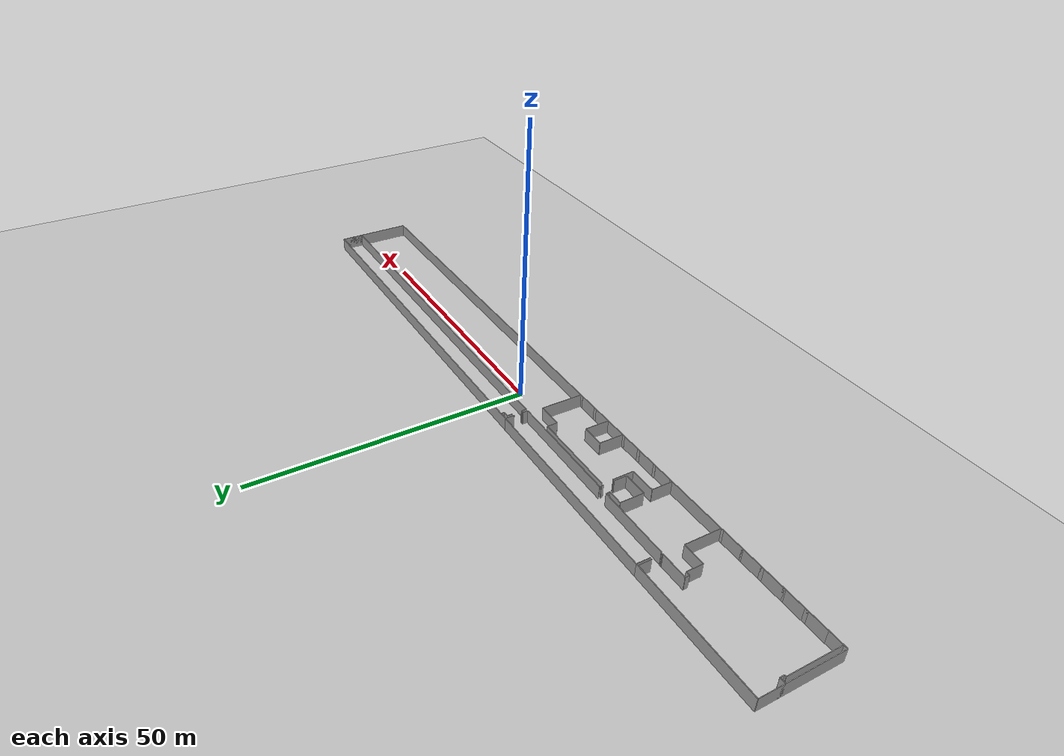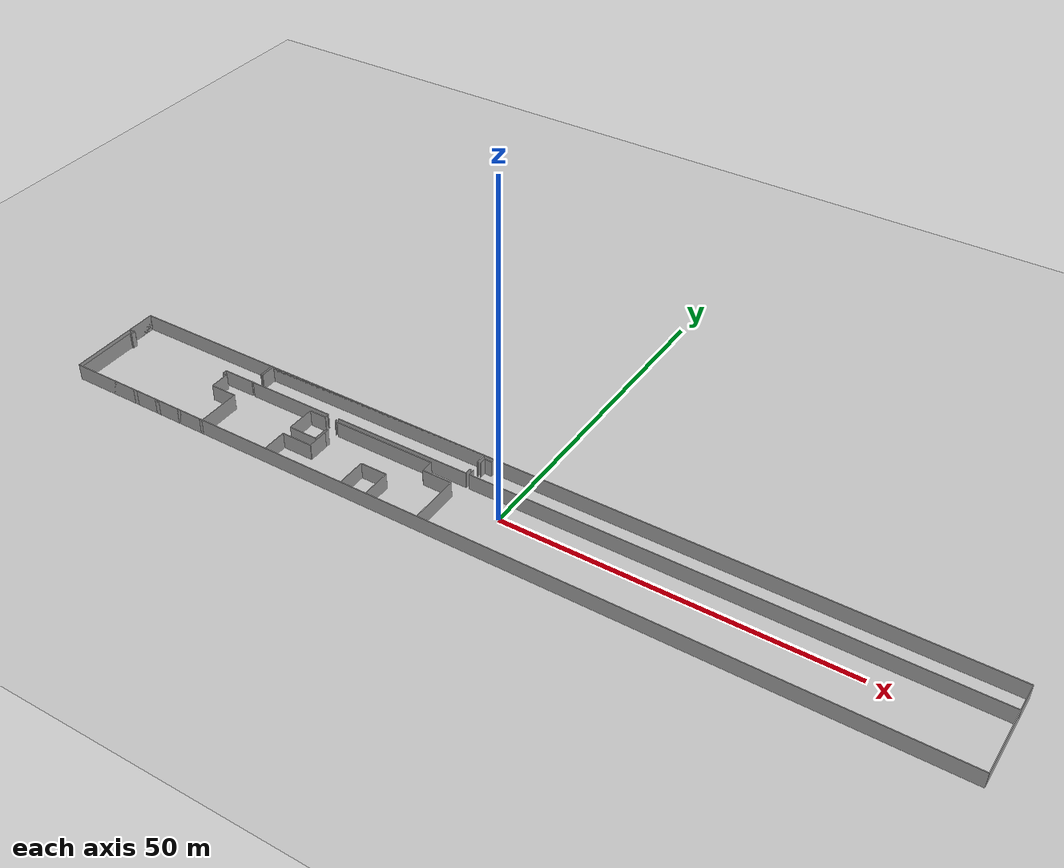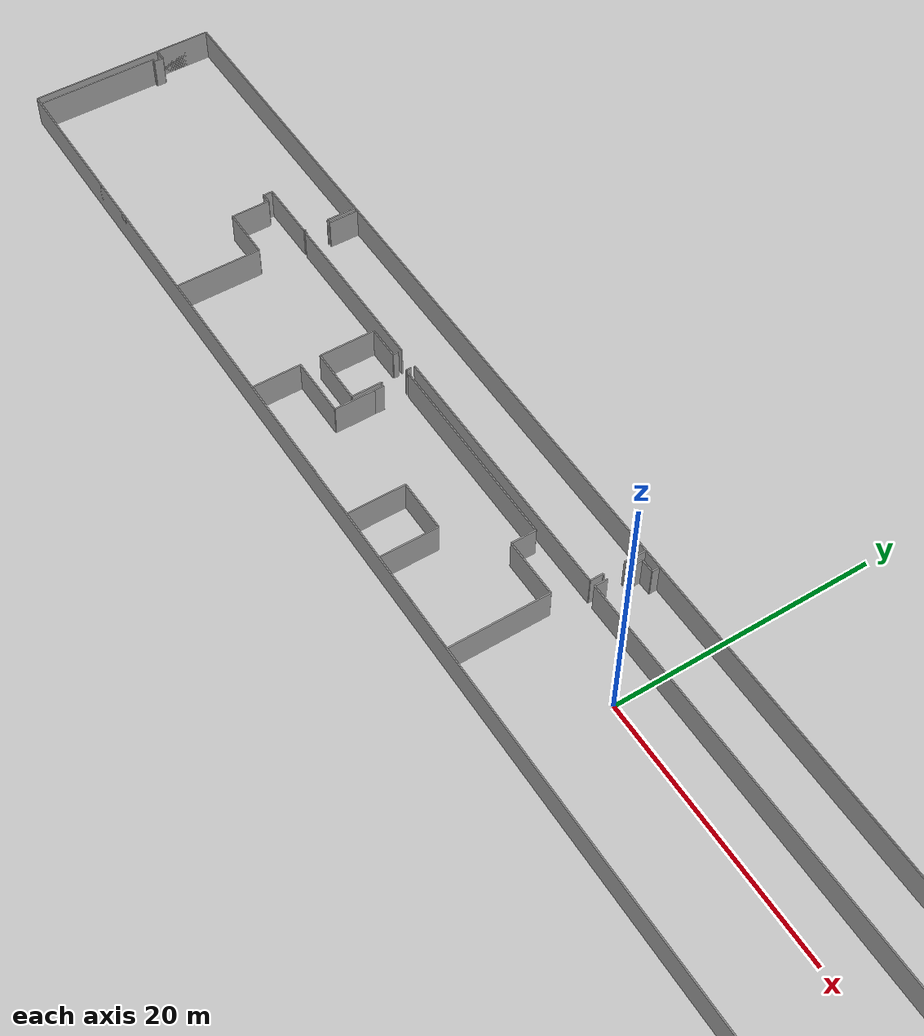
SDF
<sdf version="1.6">
  <world name="default">
    <light name="sun" type="directional">
      <cast_shadows>1</cast_shadows>
      <pose frame="">0 0 10 0 -0 0</pose>
      <diffuse>0.8 0.8 0.8 1</diffuse>
      <specular>0.1 0.1 0.1 1</specular>
      <attenuation>
        <range>1000</range>
        <constant>0.9</constant>
        <linear>0.01</linear>
        <quadratic>0.001</quadratic>
      </attenuation>
      <direction>-0.5 0.5 -1</direction>
    </light>
    <model name="ground_plane">
      <static>1</static>
      <link name="link">
        <collision name="collision">
          <geometry>
            <plane>
              <normal>0 0 1</normal>
              <size>100 100</size>
            </plane>
          </geometry>
          <surface>
            <friction>
              <ode>
                <mu>100</mu>
                <mu2>50</mu2>
              </ode>
              <torsional>
                <ode />
              </torsional>
            </friction>
            <contact>
              <ode />
            </contact>
            <bounce />
          </surface>
          <max_contacts>10</max_contacts>
        </collision>
        <visual name="visual">
          <cast_shadows>0</cast_shadows>
          <geometry>
            <plane>
              <normal>0 0 1</normal>
              <size>100 100</size>
            </plane>
          </geometry>
          <material>
            <script>
              <uri>file://media/materials/scripts/gazebo.material</uri>
              <name>Gazebo/Grey</name>
            </script>
          </material>
        </visual>
        <self_collide>0</self_collide>
        <kinematic>0</kinematic>
        <gravity>1</gravity>
      </link>
    </model>
    <gravity>0 0 -9.8</gravity>
    <magnetic_field>6e-06 2.3e-05 -4.2e-05</magnetic_field>
    <atmosphere type="adiabatic" />
    <physics default="0" name="default_physics" type="ode">
      <max_step_size>0.001</max_step_size>
      <real_time_factor>1</real_time_factor>
      <real_time_update_rate>1000</real_time_update_rate>
    </physics>
    <scene>
      <ambient>0.4 0.4 0.4 1</ambient>
      <background>0.7 0.7 0.7 1</background>
      <shadows>1</shadows>
    </scene>
    <spherical_coordinates>
      <surface_model>EARTH_WGS84</surface_model>
      <latitude_deg>0</latitude_deg>
      <longitude_deg>0</longitude_deg>
      <elevation>0</elevation>
      <heading_deg>0</heading_deg>
    </spherical_coordinates>
  <model name="0510032199_A_40_1_107">
		<static>1</static>
		<link name="Wall_0">
			<collision name="Wall_0_Collision">
				<geometry>
					<box>
						<size>9.55492141373 0.1 2.5</size>
					</box>
				</geometry>
				<pose frame="">4.77746070686 0 1.25 0 0 0</pose>
			</collision>
			<visual name="Wall_0_Visual">
				<pose frame="">4.77746070686 0 1.25 0 0 0</pose>
				<geometry>
					<box>
						<size>9.55492141373 0.1 2.5</size>
					</box>
				</geometry>
				<material>
					<script>
						<uri>file://media/materials/scripts/gazebo.material</uri>
						<name>Gazebo/Grey</name>
					</script>
					<ambient>1 1 1 1</ambient>
				</material>
			</visual>
			<pose frame="">0.675466973427 -14.625118372 0 0 0 1.57079632679</pose>
		</link>
		<link name="Wall_1">
			<collision name="Wall_1_Collision">
				<geometry>
					<box>
						<size>0.268966525362 0.1 2.5</size>
					</box>
				</geometry>
				<pose frame="">0.134483262681 0 1.25 0 0 0</pose>
			</collision>
			<visual name="Wall_1_Visual">
				<pose frame="">0.134483262681 0 1.25 0 0 0</pose>
				<geometry>
					<box>
						<size>0.268966525362 0.1 2.5</size>
					</box>
				</geometry>
				<material>
					<script>
						<uri>file://media/materials/scripts/gazebo.material</uri>
						<name>Gazebo/Grey</name>
					</script>
					<ambient>1 1 1 1</ambient>
				</material>
			</visual>
			<pose frame="">0.675466973427 -5.07019695824 0 0 0 0.0</pose>
		</link>
		<link name="Wall_2">
			<collision name="Wall_2_Collision">
				<geometry>
					<box>
						<size>0.735463287213 0.1 2.5</size>
					</box>
				</geometry>
				<pose frame="">0.367731643607 0 1.25 0 0 0</pose>
			</collision>
			<visual name="Wall_2_Visual">
				<pose frame="">0.367731643607 0 1.25 0 0 0</pose>
				<geometry>
					<box>
						<size>0.735463287213 0.1 2.5</size>
					</box>
				</geometry>
				<material>
					<script>
						<uri>file://media/materials/scripts/gazebo.material</uri>
						<name>Gazebo/Grey</name>
					</script>
					<ambient>1 1 1 1</ambient>
				</material>
			</visual>
			<pose frame="">0.944433498789 -5.07019695824 0 0 0 1.57079632679</pose>
		</link>
		<link name="Wall_3">
			<collision name="Wall_3_Collision">
				<geometry>
					<box>
						<size>0.944433498789 0.1 2.5</size>
					</box>
				</geometry>
				<pose frame="">0.472216749395 0 1.25 0 0 0</pose>
			</collision>
			<visual name="Wall_3_Visual">
				<pose frame="">0.472216749395 0 1.25 0 0 0</pose>
				<geometry>
					<box>
						<size>0.944433498789 0.1 2.5</size>
					</box>
				</geometry>
				<material>
					<script>
						<uri>file://media/materials/scripts/gazebo.material</uri>
						<name>Gazebo/Grey</name>
					</script>
					<ambient>1 1 1 1</ambient>
				</material>
			</visual>
			<pose frame="">0.944433498789 -4.33473367102 0 0 0 3.14159265359</pose>
		</link>
		<link name="Wall_4">
			<collision name="Wall_4_Collision">
				<geometry>
					<box>
						<size>4.31948037091 0.1 2.5</size>
					</box>
				</geometry>
				<pose frame="">2.15974018545 0 1.25 0 0 0</pose>
			</collision>
			<visual name="Wall_4_Visual">
				<pose frame="">2.15974018545 0 1.25 0 0 0</pose>
				<geometry>
					<box>
						<size>4.31948037091 0.1 2.5</size>
					</box>
				</geometry>
				<material>
					<script>
						<uri>file://media/materials/scripts/gazebo.material</uri>
						<name>Gazebo/Grey</name>
					</script>
					<ambient>1 1 1 1</ambient>
				</material>
			</visual>
			<pose frame="">0.0 -4.33473367102 0 0 0 1.57079632679</pose>
		</link>
		<link name="Wall_5">
			<collision name="Wall_5_Collision">
				<geometry>
					<box>
						<size>23.1593397863 0.1 2.5</size>
					</box>
				</geometry>
				<pose frame="">11.5796698932 0 1.25 0 0 0</pose>
			</collision>
			<visual name="Wall_5_Visual">
				<pose frame="">11.5796698932 0 1.25 0 0 0</pose>
				<geometry>
					<box>
						<size>23.1593397863 0.1 2.5</size>
					</box>
				</geometry>
				<material>
					<script>
						<uri>file://media/materials/scripts/gazebo.material</uri>
						<name>Gazebo/Grey</name>
					</script>
					<ambient>1 1 1 1</ambient>
				</material>
			</visual>
			<pose frame="">0.0 -0.015253300115 0 0 0 0.0</pose>
		</link>
		<link name="Wall_6">
			<collision name="Wall_6_Collision">
				<geometry>
					<box>
						<size>2.33286514176 0.1 2.5</size>
					</box>
				</geometry>
				<pose frame="">1.16643257088 0 1.25 0 0 0</pose>
			</collision>
			<visual name="Wall_6_Visual">
				<pose frame="">1.16643257088 0 1.25 0 0 0</pose>
				<geometry>
					<box>
						<size>2.33286514176 0.1 2.5</size>
					</box>
				</geometry>
				<material>
					<script>
						<uri>file://media/materials/scripts/gazebo.material</uri>
						<name>Gazebo/Grey</name>
					</script>
					<ambient>1 1 1 1</ambient>
				</material>
			</visual>
			<pose frame="">23.1593397863 -0.015253300115 0 0 0 -1.57079632679</pose>
		</link>
		<link name="Wall_7">
			<collision name="Wall_7_Collision">
				<geometry>
					<box>
						<size>0.0934264632046 0.1 2.5</size>
					</box>
				</geometry>
				<pose frame="">0.0467132316023 0 1.25 0 0 0</pose>
			</collision>
			<visual name="Wall_7_Visual">
				<pose frame="">0.0467132316023 0 1.25 0 0 0</pose>
				<geometry>
					<box>
						<size>0.0934264632046 0.1 2.5</size>
					</box>
				</geometry>
				<material>
					<script>
						<uri>file://media/materials/scripts/gazebo.material</uri>
						<name>Gazebo/Grey</name>
					</script>
					<ambient>1 1 1 1</ambient>
				</material>
			</visual>
			<pose frame="">23.1593397863 -2.34811844188 0 0 0 0.0</pose>
		</link>
		<link name="Wall_8">
			<collision name="Wall_8_Collision">
				<geometry>
					<box>
						<size>0.0714362888721 0.1 2.5</size>
					</box>
				</geometry>
				<pose frame="">0.035718144436 0 1.25 0 0 0</pose>
			</collision>
			<visual name="Wall_8_Visual">
				<pose frame="">0.035718144436 0 1.25 0 0 0</pose>
				<geometry>
					<box>
						<size>0.0714362888721 0.1 2.5</size>
					</box>
				</geometry>
				<material>
					<script>
						<uri>file://media/materials/scripts/gazebo.material</uri>
						<name>Gazebo/Grey</name>
					</script>
					<ambient>1 1 1 1</ambient>
				</material>
			</visual>
			<pose frame="">23.2527662495 -4.23596855278 0 0 0 3.14159265359</pose>
		</link>
		<link name="Wall_9">
			<collision name="Wall_9_Collision">
				<geometry>
					<box>
						<size>0.0831304856269 0.1 2.5</size>
					</box>
				</geometry>
				<pose frame="">0.0415652428135 0 1.25 0 0 0</pose>
			</collision>
			<visual name="Wall_9_Visual">
				<pose frame="">0.0415652428135 0 1.25 0 0 0</pose>
				<geometry>
					<box>
						<size>0.0831304856269 0.1 2.5</size>
					</box>
				</geometry>
				<material>
					<script>
						<uri>file://media/materials/scripts/gazebo.material</uri>
						<name>Gazebo/Grey</name>
					</script>
					<ambient>1 1 1 1</ambient>
				</material>
			</visual>
			<pose frame="">23.1813299607 -4.23596855278 0 0 0 -1.57079632679</pose>
		</link>
		<link name="Wall_10">
			<collision name="Wall_10_Collision">
				<geometry>
					<box>
						<size>4.71898972309 0.1 2.5</size>
					</box>
				</geometry>
				<pose frame="">2.35949486154 0 1.25 0 0 0</pose>
			</collision>
			<visual name="Wall_10_Visual">
				<pose frame="">2.35949486154 0 1.25 0 0 0</pose>
				<geometry>
					<box>
						<size>4.71898972309 0.1 2.5</size>
					</box>
				</geometry>
				<material>
					<script>
						<uri>file://media/materials/scripts/gazebo.material</uri>
						<name>Gazebo/Grey</name>
					</script>
					<ambient>1 1 1 1</ambient>
				</material>
			</visual>
			<pose frame="">23.1813299607 -4.31909903841 0 0 0 3.14159265359</pose>
		</link>
		<link name="Wall_11">
			<collision name="Wall_11_Collision">
				<geometry>
					<box>
						<size>0.717667770412 0.1 2.5</size>
					</box>
				</geometry>
				<pose frame="">0.358833885206 0 1.25 0 0 0</pose>
			</collision>
			<visual name="Wall_11_Visual">
				<pose frame="">0.358833885206 0 1.25 0 0 0</pose>
				<geometry>
					<box>
						<size>0.717667770412 0.1 2.5</size>
					</box>
				</geometry>
				<material>
					<script>
						<uri>file://media/materials/scripts/gazebo.material</uri>
						<name>Gazebo/Grey</name>
					</script>
					<ambient>1 1 1 1</ambient>
				</material>
			</visual>
			<pose frame="">18.4623402376 -4.31909903841 0 0 0 -1.57079632679</pose>
		</link>
		<link name="Wall_12">
			<collision name="Wall_12_Collision">
				<geometry>
					<box>
						<size>0.710295342023 0.1 2.5</size>
					</box>
				</geometry>
				<pose frame="">0.355147671012 0 1.25 0 0 0</pose>
			</collision>
			<visual name="Wall_12_Visual">
				<pose frame="">0.355147671012 0 1.25 0 0 0</pose>
				<geometry>
					<box>
						<size>0.710295342023 0.1 2.5</size>
					</box>
				</geometry>
				<material>
					<script>
						<uri>file://media/materials/scripts/gazebo.material</uri>
						<name>Gazebo/Grey</name>
					</script>
					<ambient>1 1 1 1</ambient>
				</material>
			</visual>
			<pose frame="">18.4623402376 -5.03676680882 0 0 0 0.0</pose>
		</link>
		<link name="Wall_13">
			<collision name="Wall_13_Collision">
				<geometry>
					<box>
						<size>2.98074906415 0.1 2.5</size>
					</box>
				</geometry>
				<pose frame="">1.49037453207 0 1.25 0 0 0</pose>
			</collision>
			<visual name="Wall_13_Visual">
				<pose frame="">1.49037453207 0 1.25 0 0 0</pose>
				<geometry>
					<box>
						<size>2.98074906415 0.1 2.5</size>
					</box>
				</geometry>
				<material>
					<script>
						<uri>file://media/materials/scripts/gazebo.material</uri>
						<name>Gazebo/Grey</name>
					</script>
					<ambient>1 1 1 1</ambient>
				</material>
			</visual>
			<pose frame="">19.1726355796 -5.03676680882 0 0 0 -1.57079632679</pose>
		</link>
		<link name="Wall_14">
			<collision name="Wall_14_Collision">
				<geometry>
					<box>
						<size>3.97958600001 0.1 2.5</size>
					</box>
				</geometry>
				<pose frame="">1.98979300001 0 1.25 0 0 0</pose>
			</collision>
			<visual name="Wall_14_Visual">
				<pose frame="">1.98979300001 0 1.25 0 0 0</pose>
				<geometry>
					<box>
						<size>3.97958600001 0.1 2.5</size>
					</box>
				</geometry>
				<material>
					<script>
						<uri>file://media/materials/scripts/gazebo.material</uri>
						<name>Gazebo/Grey</name>
					</script>
					<ambient>1 1 1 1</ambient>
				</material>
			</visual>
			<pose frame="">19.1726355796 -8.01751587297 0 0 0 0.0</pose>
		</link>
		<link name="Wall_15">
			<collision name="Wall_15_Collision">
				<geometry>
					<box>
						<size>6.62743178915 0.1 2.5</size>
					</box>
				</geometry>
				<pose frame="">3.31371589457 0 1.25 0 0 0</pose>
			</collision>
			<visual name="Wall_15_Visual">
				<pose frame="">3.31371589457 0 1.25 0 0 0</pose>
				<geometry>
					<box>
						<size>6.62743178915 0.1 2.5</size>
					</box>
				</geometry>
				<material>
					<script>
						<uri>file://media/materials/scripts/gazebo.material</uri>
						<name>Gazebo/Grey</name>
					</script>
					<ambient>1 1 1 1</ambient>
				</material>
			</visual>
			<pose frame="">23.1522215796 -8.01751587297 0 0 0 -1.57079632679</pose>
		</link>
		<link name="Wall_16">
			<collision name="Wall_16_Collision">
				<geometry>
					<box>
						<size>0.540856599912 0.1 2.5</size>
					</box>
				</geometry>
				<pose frame="">0.270428299956 0 1.25 0 0 0</pose>
			</collision>
			<visual name="Wall_16_Visual">
				<pose frame="">0.270428299956 0 1.25 0 0 0</pose>
				<geometry>
					<box>
						<size>0.540856599912 0.1 2.5</size>
					</box>
				</geometry>
				<material>
					<script>
						<uri>file://media/materials/scripts/gazebo.material</uri>
						<name>Gazebo/Grey</name>
					</script>
					<ambient>1 1 1 1</ambient>
				</material>
			</visual>
			<pose frame="">23.1522215796 -14.6449476621 0 0 0 3.14159265359</pose>
		</link>
		<link name="Wall_17">
			<collision name="Wall_17_Collision">
				<geometry>
					<box>
						<size>0.621444868853 0.1 2.5</size>
					</box>
				</geometry>
				<pose frame="">0.310722434427 0 1.25 0 0 0</pose>
			</collision>
			<visual name="Wall_17_Visual">
				<pose frame="">0.310722434427 0 1.25 0 0 0</pose>
				<geometry>
					<box>
						<size>0.621444868853 0.1 2.5</size>
					</box>
				</geometry>
				<material>
					<script>
						<uri>file://media/materials/scripts/gazebo.material</uri>
						<name>Gazebo/Grey</name>
					</script>
					<ambient>1 1 1 1</ambient>
				</material>
			</visual>
			<pose frame="">19.1967866381 -14.6449476621 0 0 0 3.14159265359</pose>
		</link>
		<link name="Wall_18">
			<collision name="Wall_18_Collision">
				<geometry>
					<box>
						<size>0.67762785761 0.1 2.5</size>
					</box>
				</geometry>
				<pose frame="">0.338813928805 0 1.25 0 0 0</pose>
			</collision>
			<visual name="Wall_18_Visual">
				<pose frame="">0.338813928805 0 1.25 0 0 0</pose>
				<geometry>
					<box>
						<size>0.67762785761 0.1 2.5</size>
					</box>
				</geometry>
				<material>
					<script>
						<uri>file://media/materials/scripts/gazebo.material</uri>
						<name>Gazebo/Grey</name>
					</script>
					<ambient>1 1 1 1</ambient>
				</material>
			</visual>
			<pose frame="">15.1926682471 -14.6449476621 0 0 0 3.14159265359</pose>
		</link>
		<link name="Wall_19">
			<collision name="Wall_19_Collision">
				<geometry>
					<box>
						<size>0.635681282294 0.1 2.5</size>
					</box>
				</geometry>
				<pose frame="">0.317840641147 0 1.25 0 0 0</pose>
			</collision>
			<visual name="Wall_19_Visual">
				<pose frame="">0.317840641147 0 1.25 0 0 0</pose>
				<geometry>
					<box>
						<size>0.635681282294 0.1 2.5</size>
					</box>
				</geometry>
				<material>
					<script>
						<uri>file://media/materials/scripts/gazebo.material</uri>
						<name>Gazebo/Grey</name>
					</script>
					<ambient>1 1 1 1</ambient>
				</material>
			</visual>
			<pose frame="">11.1185117864 -14.6449476621 0 0 0 3.14159265359</pose>
		</link>
		<link name="Wall_20">
			<collision name="Wall_20_Collision">
				<geometry>
					<box>
						<size>0.652332801586 0.1 2.5</size>
					</box>
				</geometry>
				<pose frame="">0.326166400793 0 1.25 0 0 0</pose>
			</collision>
			<visual name="Wall_20_Visual">
				<pose frame="">0.326166400793 0 1.25 0 0 0</pose>
				<geometry>
					<box>
						<size>0.652332801586 0.1 2.5</size>
					</box>
				</geometry>
				<material>
					<script>
						<uri>file://media/materials/scripts/gazebo.material</uri>
						<name>Gazebo/Grey</name>
					</script>
					<ambient>1 1 1 1</ambient>
				</material>
			</visual>
			<pose frame="">7.11286806531 -14.6449476621 0 0 0 3.14159265359</pose>
		</link>
		<link name="Wall_21">
			<collision name="Wall_21_Collision">
				<geometry>
					<box>
						<size>2.41099273872 0.1 2.5</size>
					</box>
				</geometry>
				<pose frame="">1.20549636936 0 1.25 0 0 0</pose>
			</collision>
			<visual name="Wall_21_Visual">
				<pose frame="">1.20549636936 0 1.25 0 0 0</pose>
				<geometry>
					<box>
						<size>2.41099273872 0.1 2.5</size>
					</box>
				</geometry>
				<material>
					<script>
						<uri>file://media/materials/scripts/gazebo.material</uri>
						<name>Gazebo/Grey</name>
					</script>
					<ambient>1 1 1 1</ambient>
				</material>
			</visual>
			<pose frame="">3.08637816744 -14.6449476621 0 0 0 3.13336802753</pose>
		</link>
		<link name="Wall_22">
			<collision name="Wall_22_Collision">
				<geometry>
					<box>
						<size>35.8902525057 0.1 2.5</size>
					</box>
				</geometry>
				<pose frame="">17.9451262528 0 1.25 0 0 0</pose>
			</collision>
			<visual name="Wall_22_Visual">
				<pose frame="">17.9451262528 0 1.25 0 0 0</pose>
				<geometry>
					<box>
						<size>35.8902525057 0.1 2.5</size>
					</box>
				</geometry>
				<material>
					<script>
						<uri>file://media/materials/scripts/gazebo.material</uri>
						<name>Gazebo/Grey</name>
					</script>
					<ambient>1 1 1 1</ambient>
				</material>
			</visual>
			<pose frame="">23.4969461622 -0.0 0 0 0 0.0</pose>
		</link>
		<link name="Wall_23">
			<collision name="Wall_23_Collision">
				<geometry>
					<box>
						<size>1.67227013595 0.1 2.5</size>
					</box>
				</geometry>
				<pose frame="">0.836135067973 0 1.25 0 0 0</pose>
			</collision>
			<visual name="Wall_23_Visual">
				<pose frame="">0.836135067973 0 1.25 0 0 0</pose>
				<geometry>
					<box>
						<size>1.67227013595 0.1 2.5</size>
					</box>
				</geometry>
				<material>
					<script>
						<uri>file://media/materials/scripts/gazebo.material</uri>
						<name>Gazebo/Grey</name>
					</script>
					<ambient>1 1 1 1</ambient>
				</material>
			</visual>
			<pose frame="">59.3871986679 -0.0 0 0 0 -1.57079632679</pose>
		</link>
		<link name="Wall_24">
			<collision name="Wall_24_Collision">
				<geometry>
					<box>
						<size>0.152660111985 0.1 2.5</size>
					</box>
				</geometry>
				<pose frame="">0.0763300559923 0 1.25 0 0 0</pose>
			</collision>
			<visual name="Wall_24_Visual">
				<pose frame="">0.0763300559923 0 1.25 0 0 0</pose>
				<geometry>
					<box>
						<size>0.152660111985 0.1 2.5</size>
					</box>
				</geometry>
				<material>
					<script>
						<uri>file://media/materials/scripts/gazebo.material</uri>
						<name>Gazebo/Grey</name>
					</script>
					<ambient>1 1 1 1</ambient>
				</material>
			</visual>
			<pose frame="">59.3871986679 -1.67227013595 0 0 0 0.0</pose>
		</link>
		<link name="Wall_25">
			<collision name="Wall_25_Collision">
				<geometry>
					<box>
						<size>0.138423698544 0.1 2.5</size>
					</box>
				</geometry>
				<pose frame="">0.069211849272 0 1.25 0 0 0</pose>
			</collision>
			<visual name="Wall_25_Visual">
				<pose frame="">0.069211849272 0 1.25 0 0 0</pose>
				<geometry>
					<box>
						<size>0.138423698544 0.1 2.5</size>
					</box>
				</geometry>
				<material>
					<script>
						<uri>file://media/materials/scripts/gazebo.material</uri>
						<name>Gazebo/Grey</name>
					</script>
					<ambient>1 1 1 1</ambient>
				</material>
			</visual>
			<pose frame="">59.5398587799 -3.34886204026 0 0 0 3.14159265359</pose>
		</link>
		<link name="Wall_26">
			<collision name="Wall_26_Collision">
				<geometry>
					<box>
						<size>0.98917651246 0.1 2.5</size>
					</box>
				</geometry>
				<pose frame="">0.49458825623 0 1.25 0 0 0</pose>
			</collision>
			<visual name="Wall_26_Visual">
				<pose frame="">0.49458825623 0 1.25 0 0 0</pose>
				<geometry>
					<box>
						<size>0.98917651246 0.1 2.5</size>
					</box>
				</geometry>
				<material>
					<script>
						<uri>file://media/materials/scripts/gazebo.material</uri>
						<name>Gazebo/Grey</name>
					</script>
					<ambient>1 1 1 1</ambient>
				</material>
			</visual>
			<pose frame="">59.4014350813 -3.34886204026 0 0 0 -1.57079632679</pose>
		</link>
		<link name="Wall_27">
			<collision name="Wall_27_Collision">
				<geometry>
					<box>
						<size>20.9626103481 0.1 2.5</size>
					</box>
				</geometry>
				<pose frame="">10.481305174 0 1.25 0 0 0</pose>
			</collision>
			<visual name="Wall_27_Visual">
				<pose frame="">10.481305174 0 1.25 0 0 0</pose>
				<geometry>
					<box>
						<size>20.9626103481 0.1 2.5</size>
					</box>
				</geometry>
				<material>
					<script>
						<uri>file://media/materials/scripts/gazebo.material</uri>
						<name>Gazebo/Grey</name>
					</script>
					<ambient>1 1 1 1</ambient>
				</material>
			</visual>
			<pose frame="">59.4014350813 -4.33803855272 0 0 0 3.14159265359</pose>
		</link>
		<link name="Wall_28">
			<collision name="Wall_28_Collision">
				<geometry>
					<box>
						<size>13.2983354836 0.1 2.5</size>
					</box>
				</geometry>
				<pose frame="">6.64916774181 0 1.25 0 0 0</pose>
			</collision>
			<visual name="Wall_28_Visual">
				<pose frame="">6.64916774181 0 1.25 0 0 0</pose>
				<geometry>
					<box>
						<size>13.2983354836 0.1 2.5</size>
					</box>
				</geometry>
				<material>
					<script>
						<uri>file://media/materials/scripts/gazebo.material</uri>
						<name>Gazebo/Grey</name>
					</script>
					<ambient>1 1 1 1</ambient>
				</material>
			</visual>
			<pose frame="">36.7732914715 -4.33803855272 0 0 0 3.14159265359</pose>
		</link>
		<link name="Wall_29">
			<collision name="Wall_29_Collision">
				<geometry>
					<box>
						<size>0.11757752172 0.1 2.5</size>
					</box>
				</geometry>
				<pose frame="">0.05878876086 0 1.25 0 0 0</pose>
			</collision>
			<visual name="Wall_29_Visual">
				<pose frame="">0.05878876086 0 1.25 0 0 0</pose>
				<geometry>
					<box>
						<size>0.11757752172 0.1 2.5</size>
					</box>
				</geometry>
				<material>
					<script>
						<uri>file://media/materials/scripts/gazebo.material</uri>
						<name>Gazebo/Grey</name>
					</script>
					<ambient>1 1 1 1</ambient>
				</material>
			</visual>
			<pose frame="">23.4749559879 -4.33803855272 0 0 0 1.57079632679</pose>
		</link>
		<link name="Wall_30">
			<collision name="Wall_30_Collision">
				<geometry>
					<box>
						<size>2.34822140882 0.1 2.5</size>
					</box>
				</geometry>
				<pose frame="">1.17411070441 0 1.25 0 0 0</pose>
			</collision>
			<visual name="Wall_30_Visual">
				<pose frame="">1.17411070441 0 1.25 0 0 0</pose>
				<geometry>
					<box>
						<size>2.34822140882 0.1 2.5</size>
					</box>
				</geometry>
				<material>
					<script>
						<uri>file://media/materials/scripts/gazebo.material</uri>
						<name>Gazebo/Grey</name>
					</script>
					<ambient>1 1 1 1</ambient>
				</material>
			</visual>
			<pose frame="">23.4749559879 -2.34811844188 0 0 0 1.56143158135</pose>
		</link>
		<link name="Wall_31">
			<collision name="Wall_31_Collision">
				<geometry>
					<box>
						<size>4.29088043319 0.1 2.5</size>
					</box>
				</geometry>
				<pose frame="">2.1454402166 0 1.25 0 0 0</pose>
			</collision>
			<visual name="Wall_31_Visual">
				<pose frame="">2.1454402166 0 1.25 0 0 0</pose>
				<geometry>
					<box>
						<size>4.29088043319 0.1 2.5</size>
					</box>
				</geometry>
				<material>
					<script>
						<uri>file://media/materials/scripts/gazebo.material</uri>
						<name>Gazebo/Grey</name>
					</script>
					<ambient>1 1 1 1</ambient>
				</material>
			</visual>
			<pose frame="">34.1811202278 -9.33184189954 0 0 0 1.57079632679</pose>
		</link>
		<link name="Wall_32">
			<collision name="Wall_32_Collision">
				<geometry>
					<box>
						<size>2.5854343695 0.1 2.5</size>
					</box>
				</geometry>
				<pose frame="">1.29271718475 0 1.25 0 0 0</pose>
			</collision>
			<visual name="Wall_32_Visual">
				<pose frame="">1.29271718475 0 1.25 0 0 0</pose>
				<geometry>
					<box>
						<size>2.5854343695 0.1 2.5</size>
					</box>
				</geometry>
				<material>
					<script>
						<uri>file://media/materials/scripts/gazebo.material</uri>
						<name>Gazebo/Grey</name>
					</script>
					<ambient>1 1 1 1</ambient>
				</material>
			</visual>
			<pose frame="">34.1811202278 -5.04096146635 0 0 0 0.0</pose>
		</link>
		<link name="Wall_33">
			<collision name="Wall_33_Collision">
				<geometry>
					<box>
						<size>0.409169775586 0.1 2.5</size>
					</box>
				</geometry>
				<pose frame="">0.204584887793 0 1.25 0 0 0</pose>
			</collision>
			<visual name="Wall_33_Visual">
				<pose frame="">0.204584887793 0 1.25 0 0 0</pose>
				<geometry>
					<box>
						<size>0.409169775586 0.1 2.5</size>
					</box>
				</geometry>
				<material>
					<script>
						<uri>file://media/materials/scripts/gazebo.material</uri>
						<name>Gazebo/Grey</name>
					</script>
					<ambient>1 1 1 1</ambient>
				</material>
			</visual>
			<pose frame="">36.7665545973 -5.04096146635 0 0 0 1.57079632679</pose>
		</link>
		<link name="Wall_34">
			<collision name="Wall_34_Collision">
				<geometry>
					<box>
						<size>0.388323598762 0.1 2.5</size>
					</box>
				</geometry>
				<pose frame="">0.194161799381 0 1.25 0 0 0</pose>
			</collision>
			<visual name="Wall_34_Visual">
				<pose frame="">0.194161799381 0 1.25 0 0 0</pose>
				<geometry>
					<box>
						<size>0.388323598762 0.1 2.5</size>
					</box>
				</geometry>
				<material>
					<script>
						<uri>file://media/materials/scripts/gazebo.material</uri>
						<name>Gazebo/Grey</name>
					</script>
					<ambient>1 1 1 1</ambient>
				</material>
			</visual>
			<pose frame="">38.4372994032 -4.63179169076 0 0 0 -1.57079632679</pose>
		</link>
		<link name="Wall_35">
			<collision name="Wall_35_Collision">
				<geometry>
					<box>
						<size>0.100290448256 0.1 2.5</size>
					</box>
				</geometry>
				<pose frame="">0.0501452241282 0 1.25 0 0 0</pose>
			</collision>
			<visual name="Wall_35_Visual">
				<pose frame="">0.0501452241282 0 1.25 0 0 0</pose>
				<geometry>
					<box>
						<size>0.100290448256 0.1 2.5</size>
					</box>
				</geometry>
				<material>
					<script>
						<uri>file://media/materials/scripts/gazebo.material</uri>
						<name>Gazebo/Grey</name>
					</script>
					<ambient>1 1 1 1</ambient>
				</material>
			</visual>
			<pose frame="">38.4372994032 -5.02011528953 0 0 0 0.0</pose>
		</link>
		<link name="Wall_36">
			<collision name="Wall_36_Collision">
				<geometry>
					<box>
						<size>0.0584709837743 0.1 2.5</size>
					</box>
				</geometry>
				<pose frame="">0.0292354918872 0 1.25 0 0 0</pose>
			</collision>
			<visual name="Wall_36_Visual">
				<pose frame="">0.0292354918872 0 1.25 0 0 0</pose>
				<geometry>
					<box>
						<size>0.0584709837743 0.1 2.5</size>
					</box>
				</geometry>
				<material>
					<script>
						<uri>file://media/materials/scripts/gazebo.material</uri>
						<name>Gazebo/Grey</name>
					</script>
					<ambient>1 1 1 1</ambient>
				</material>
			</visual>
			<pose frame="">38.5375898515 -7.00927273536 0 0 0 3.14159265359</pose>
		</link>
		<link name="Wall_37">
			<collision name="Wall_37_Collision">
				<geometry>
					<box>
						<size>0.0 0.1 2.5</size>
					</box>
				</geometry>
				<pose frame="">0.0 0 1.25 0 0 0</pose>
			</collision>
			<visual name="Wall_37_Visual">
				<pose frame="">0.0 0 1.25 0 0 0</pose>
				<geometry>
					<box>
						<size>0.0 0.1 2.5</size>
					</box>
				</geometry>
				<material>
					<script>
						<uri>file://media/materials/scripts/gazebo.material</uri>
						<name>Gazebo/Grey</name>
					</script>
					<ambient>1 1 1 1</ambient>
				</material>
			</visual>
			<pose frame="">38.4791188677 -7.00927273536 0 0 0 0.0</pose>
		</link>
		<link name="Wall_38">
			<collision name="Wall_38_Collision">
				<geometry>
					<box>
						<size>2.33756824263 0.1 2.5</size>
					</box>
				</geometry>
				<pose frame="">1.16878412131 0 1.25 0 0 0</pose>
			</collision>
			<visual name="Wall_38_Visual">
				<pose frame="">1.16878412131 0 1.25 0 0 0</pose>
				<geometry>
					<box>
						<size>2.33756824263 0.1 2.5</size>
					</box>
				</geometry>
				<material>
					<script>
						<uri>file://media/materials/scripts/gazebo.material</uri>
						<name>Gazebo/Grey</name>
					</script>
					<ambient>1 1 1 1</ambient>
				</material>
			</visual>
			<pose frame="">38.4791188677 -7.00927273536 0 0 0 -1.57079632679</pose>
		</link>
		<link name="Wall_39">
			<collision name="Wall_39_Collision">
				<geometry>
					<box>
						<size>4.29802481159 0.1 2.5</size>
					</box>
				</geometry>
				<pose frame="">2.1490124058 0 1.25 0 0 0</pose>
			</collision>
			<visual name="Wall_39_Visual">
				<pose frame="">2.1490124058 0 1.25 0 0 0</pose>
				<geometry>
					<box>
						<size>4.29802481159 0.1 2.5</size>
					</box>
				</geometry>
				<material>
					<script>
						<uri>file://media/materials/scripts/gazebo.material</uri>
						<name>Gazebo/Grey</name>
					</script>
					<ambient>1 1 1 1</ambient>
				</material>
			</visual>
			<pose frame="">38.4791188677 -9.34684097799 0 0 0 3.13810288572</pose>
		</link>
		<link name="Wall_40">
			<collision name="Wall_40_Collision">
				<geometry>
					<box>
						<size>0.718684657087 0.1 2.5</size>
					</box>
				</geometry>
				<pose frame="">0.359342328543 0 1.25 0 0 0</pose>
			</collision>
			<visual name="Wall_40_Visual">
				<pose frame="">0.359342328543 0 1.25 0 0 0</pose>
				<geometry>
					<box>
						<size>0.718684657087 0.1 2.5</size>
					</box>
				</geometry>
				<material>
					<script>
						<uri>file://media/materials/scripts/gazebo.material</uri>
						<name>Gazebo/Grey</name>
					</script>
					<ambient>1 1 1 1</ambient>
				</material>
			</visual>
			<pose frame="">38.8050310468 -7.7529982268 0 0 0 1.57079632679</pose>
		</link>
		<link name="Wall_41">
			<collision name="Wall_41_Collision">
				<geometry>
					<box>
						<size>15.5454008122 0.1 2.5</size>
					</box>
				</geometry>
				<pose frame="">7.77270040612 0 1.25 0 0 0</pose>
			</collision>
			<visual name="Wall_41_Visual">
				<pose frame="">7.77270040612 0 1.25 0 0 0</pose>
				<geometry>
					<box>
						<size>15.5454008122 0.1 2.5</size>
					</box>
				</geometry>
				<material>
					<script>
						<uri>file://media/materials/scripts/gazebo.material</uri>
						<name>Gazebo/Grey</name>
					</script>
					<ambient>1 1 1 1</ambient>
				</material>
			</visual>
			<pose frame="">38.8050310468 -5.04439345888 0 0 0 0.0</pose>
		</link>
		<link name="Wall_42">
			<collision name="Wall_42_Collision">
				<geometry>
					<box>
						<size>1.89801897765 0.1 2.5</size>
					</box>
				</geometry>
				<pose frame="">0.949009488824 0 1.25 0 0 0</pose>
			</collision>
			<visual name="Wall_42_Visual">
				<pose frame="">0.949009488824 0 1.25 0 0 0</pose>
				<geometry>
					<box>
						<size>1.89801897765 0.1 2.5</size>
					</box>
				</geometry>
				<material>
					<script>
						<uri>file://media/materials/scripts/gazebo.material</uri>
						<name>Gazebo/Grey</name>
					</script>
					<ambient>1 1 1 1</ambient>
				</material>
			</visual>
			<pose frame="">54.3504318591 -5.04439345888 0 0 0 -1.57079632679</pose>
		</link>
		<link name="Wall_43">
			<collision name="Wall_43_Collision">
				<geometry>
					<box>
						<size>4.49896086893 0.1 2.5</size>
					</box>
				</geometry>
				<pose frame="">2.24948043446 0 1.25 0 0 0</pose>
			</collision>
			<visual name="Wall_43_Visual">
				<pose frame="">2.24948043446 0 1.25 0 0 0</pose>
				<geometry>
					<box>
						<size>4.49896086893 0.1 2.5</size>
					</box>
				</geometry>
				<material>
					<script>
						<uri>file://media/materials/scripts/gazebo.material</uri>
						<name>Gazebo/Grey</name>
					</script>
					<ambient>1 1 1 1</ambient>
				</material>
			</visual>
			<pose frame="">54.3504318591 -6.94241243652 0 0 0 0.0</pose>
		</link>
		<link name="Wall_44">
			<collision name="Wall_44_Collision">
				<geometry>
					<box>
						<size>7.69821345722 0.1 2.5</size>
					</box>
				</geometry>
				<pose frame="">3.84910672861 0 1.25 0 0 0</pose>
			</collision>
			<visual name="Wall_44_Visual">
				<pose frame="">3.84910672861 0 1.25 0 0 0</pose>
				<geometry>
					<box>
						<size>7.69821345722 0.1 2.5</size>
					</box>
				</geometry>
				<material>
					<script>
						<uri>file://media/materials/scripts/gazebo.material</uri>
						<name>Gazebo/Grey</name>
					</script>
					<ambient>1 1 1 1</ambient>
				</material>
			</visual>
			<pose frame="">58.849392728 -6.94241243652 0 0 0 -1.57079632679</pose>
		</link>
		<link name="Wall_45">
			<collision name="Wall_45_Collision">
				<geometry>
					<box>
						<size>0.566151655936 0.1 2.5</size>
					</box>
				</geometry>
				<pose frame="">0.283075827968 0 1.25 0 0 0</pose>
			</collision>
			<visual name="Wall_45_Visual">
				<pose frame="">0.283075827968 0 1.25 0 0 0</pose>
				<geometry>
					<box>
						<size>0.566151655936 0.1 2.5</size>
					</box>
				</geometry>
				<material>
					<script>
						<uri>file://media/materials/scripts/gazebo.material</uri>
						<name>Gazebo/Grey</name>
					</script>
					<ambient>1 1 1 1</ambient>
				</material>
			</visual>
			<pose frame="">58.849392728 -14.6406258937 0 0 0 3.14159265359</pose>
		</link>
		<link name="Wall_46">
			<collision name="Wall_46_Collision">
				<geometry>
					<box>
						<size>0.640257272329 0.1 2.5</size>
					</box>
				</geometry>
				<pose frame="">0.320128636164 0 1.25 0 0 0</pose>
			</collision>
			<visual name="Wall_46_Visual">
				<pose frame="">0.320128636164 0 1.25 0 0 0</pose>
				<geometry>
					<box>
						<size>0.640257272329 0.1 2.5</size>
					</box>
				</geometry>
				<material>
					<script>
						<uri>file://media/materials/scripts/gazebo.material</uri>
						<name>Gazebo/Grey</name>
					</script>
					<ambient>1 1 1 1</ambient>
				</material>
			</visual>
			<pose frame="">54.8903986831 -14.6406258937 0 0 0 3.14159265359</pose>
		</link>
		<link name="Wall_47">
			<collision name="Wall_47_Collision">
				<geometry>
					<box>
						<size>4.46527649784 0.1 2.5</size>
					</box>
				</geometry>
				<pose frame="">2.23263824892 0 1.25 0 0 0</pose>
			</collision>
			<visual name="Wall_47_Visual">
				<pose frame="">2.23263824892 0 1.25 0 0 0</pose>
				<geometry>
					<box>
						<size>4.46527649784 0.1 2.5</size>
					</box>
				</geometry>
				<material>
					<script>
						<uri>file://media/materials/scripts/gazebo.material</uri>
						<name>Gazebo/Grey</name>
					</script>
					<ambient>1 1 1 1</ambient>
				</material>
			</visual>
			<pose frame="">50.8003533681 -14.6406258937 0 0 0 1.57079632679</pose>
		</link>
		<link name="Wall_48">
			<collision name="Wall_48_Collision">
				<geometry>
					<box>
						<size>4.03691298628 0.1 2.5</size>
					</box>
				</geometry>
				<pose frame="">2.01845649314 0 1.25 0 0 0</pose>
			</collision>
			<visual name="Wall_48_Visual">
				<pose frame="">2.01845649314 0 1.25 0 0 0</pose>
				<geometry>
					<box>
						<size>4.03691298628 0.1 2.5</size>
					</box>
				</geometry>
				<material>
					<script>
						<uri>file://media/materials/scripts/gazebo.material</uri>
						<name>Gazebo/Grey</name>
					</script>
					<ambient>1 1 1 1</ambient>
				</material>
			</visual>
			<pose frame="">50.8003533681 -10.1753493959 0 0 0 3.14159265359</pose>
		</link>
		<link name="Wall_49">
			<collision name="Wall_49_Collision">
				<geometry>
					<box>
						<size>4.45498052026 0.1 2.5</size>
					</box>
				</geometry>
				<pose frame="">2.22749026013 0 1.25 0 0 0</pose>
			</collision>
			<visual name="Wall_49_Visual">
				<pose frame="">2.22749026013 0 1.25 0 0 0</pose>
				<geometry>
					<box>
						<size>4.45498052026 0.1 2.5</size>
					</box>
				</geometry>
				<material>
					<script>
						<uri>file://media/materials/scripts/gazebo.material</uri>
						<name>Gazebo/Grey</name>
					</script>
					<ambient>1 1 1 1</ambient>
				</material>
			</visual>
			<pose frame="">46.7634403818 -10.1753493959 0 0 0 -1.57079632679</pose>
		</link>
		<link name="Wall_50">
			<collision name="Wall_50_Collision">
				<geometry>
					<box>
						<size>0.581404956051 0.1 2.5</size>
					</box>
				</geometry>
				<pose frame="">0.290702478026 0 1.25 0 0 0</pose>
			</collision>
			<visual name="Wall_50_Visual">
				<pose frame="">0.290702478026 0 1.25 0 0 0</pose>
				<geometry>
					<box>
						<size>0.581404956051 0.1 2.5</size>
					</box>
				</geometry>
				<material>
					<script>
						<uri>file://media/materials/scripts/gazebo.material</uri>
						<name>Gazebo/Grey</name>
					</script>
					<ambient>1 1 1 1</ambient>
				</material>
			</visual>
			<pose frame="">46.7634403818 -14.6303299162 0 0 0 3.14159265359</pose>
		</link>
		<link name="Wall_51">
			<collision name="Wall_51_Collision">
				<geometry>
					<box>
						<size>0.639494607323 0.1 2.5</size>
					</box>
				</geometry>
				<pose frame="">0.319747303661 0 1.25 0 0 0</pose>
			</collision>
			<visual name="Wall_51_Visual">
				<pose frame="">0.319747303661 0 1.25 0 0 0</pose>
				<geometry>
					<box>
						<size>0.639494607323 0.1 2.5</size>
					</box>
				</geometry>
				<material>
					<script>
						<uri>file://media/materials/scripts/gazebo.material</uri>
						<name>Gazebo/Grey</name>
					</script>
					<ambient>1 1 1 1</ambient>
				</material>
			</visual>
			<pose frame="">42.7880490394 -14.6303299162 0 0 0 3.14159265359</pose>
		</link>
		<link name="Wall_52">
			<collision name="Wall_52_Collision">
				<geometry>
					<box>
						<size>0.582421842726 0.1 2.5</size>
					</box>
				</geometry>
				<pose frame="">0.291210921363 0 1.25 0 0 0</pose>
			</collision>
			<visual name="Wall_52_Visual">
				<pose frame="">0.291210921363 0 1.25 0 0 0</pose>
				<geometry>
					<box>
						<size>0.582421842726 0.1 2.5</size>
					</box>
				</geometry>
				<material>
					<script>
						<uri>file://media/materials/scripts/gazebo.material</uri>
						<name>Gazebo/Grey</name>
					</script>
					<ambient>1 1 1 1</ambient>
				</material>
			</visual>
			<pose frame="">38.7135112461 -14.6303299162 0 0 0 3.14159265359</pose>
		</link>
		<link name="Wall_53">
			<collision name="Wall_53_Collision">
				<geometry>
					<box>
						<size>0.522044196437 0.1 2.5</size>
					</box>
				</geometry>
				<pose frame="">0.261022098219 0 1.25 0 0 0</pose>
			</collision>
			<visual name="Wall_53_Visual">
				<pose frame="">0.261022098219 0 1.25 0 0 0</pose>
				<geometry>
					<box>
						<size>0.522044196437 0.1 2.5</size>
					</box>
				</geometry>
				<material>
					<script>
						<uri>file://media/materials/scripts/gazebo.material</uri>
						<name>Gazebo/Grey</name>
					</script>
					<ambient>1 1 1 1</ambient>
				</material>
			</visual>
			<pose frame="">34.69642755 -14.6303299162 0 0 0 3.14159265359</pose>
		</link>
		<link name="Wall_54">
			<collision name="Wall_54_Collision">
				<geometry>
					<box>
						<size>3.75002383328 0.1 2.5</size>
					</box>
				</geometry>
				<pose frame="">1.87501191664 0 1.25 0 0 0</pose>
			</collision>
			<visual name="Wall_54_Visual">
				<pose frame="">1.87501191664 0 1.25 0 0 0</pose>
				<geometry>
					<box>
						<size>3.75002383328 0.1 2.5</size>
					</box>
				</geometry>
				<material>
					<script>
						<uri>file://media/materials/scripts/gazebo.material</uri>
						<name>Gazebo/Grey</name>
					</script>
					<ambient>1 1 1 1</ambient>
				</material>
			</visual>
			<pose frame="">34.1743833536 -14.6303299162 0 0 0 1.57079632679</pose>
		</link>
		<link name="Wall_55">
			<collision name="Wall_55_Collision">
				<geometry>
					<box>
						<size>4.64551966087 0.1 2.5</size>
					</box>
				</geometry>
				<pose frame="">2.32275983043 0 1.25 0 0 0</pose>
			</collision>
			<visual name="Wall_55_Visual">
				<pose frame="">2.32275983043 0 1.25 0 0 0</pose>
				<geometry>
					<box>
						<size>4.64551966087 0.1 2.5</size>
					</box>
				</geometry>
				<material>
					<script>
						<uri>file://media/materials/scripts/gazebo.material</uri>
						<name>Gazebo/Grey</name>
					</script>
					<ambient>1 1 1 1</ambient>
				</material>
			</visual>
			<pose frame="">34.1743833536 -10.8803060829 0 0 0 0.0</pose>
		</link>
		<link name="Wall_56">
			<collision name="Wall_56_Collision">
				<geometry>
					<box>
						<size>3.12734321784 0.1 2.5</size>
					</box>
				</geometry>
				<pose frame="">1.56367160892 0 1.25 0 0 0</pose>
			</collision>
			<visual name="Wall_56_Visual">
				<pose frame="">1.56367160892 0 1.25 0 0 0</pose>
				<geometry>
					<box>
						<size>3.12734321784 0.1 2.5</size>
					</box>
				</geometry>
				<material>
					<script>
						<uri>file://media/materials/scripts/gazebo.material</uri>
						<name>Gazebo/Grey</name>
					</script>
					<ambient>1 1 1 1</ambient>
				</material>
			</visual>
			<pose frame="">38.8199030144 -10.8803060829 0 0 0 1.57555180857</pose>
		</link>
		<link name="Wall_57">
			<collision name="Wall_57_Collision">
				<geometry>
					<box>
						<size>0.973287658174 0.1 2.5</size>
					</box>
				</geometry>
				<pose frame="">0.486643829087 0 1.25 0 0 0</pose>
			</collision>
			<visual name="Wall_57_Visual">
				<pose frame="">0.486643829087 0 1.25 0 0 0</pose>
				<geometry>
					<box>
						<size>0.973287658174 0.1 2.5</size>
					</box>
				</geometry>
				<material>
					<script>
						<uri>file://media/materials/scripts/gazebo.material</uri>
						<name>Gazebo/Grey</name>
					</script>
					<ambient>1 1 1 1</ambient>
				</material>
			</visual>
			<pose frame="">59.8852189166 -4.3268527993 0 0 0 1.57079632679</pose>
		</link>
		<link name="Wall_58">
			<collision name="Wall_58_Collision">
				<geometry>
					<box>
						<size>1.0471390529 0.1 2.5</size>
					</box>
				</geometry>
				<pose frame="">0.523569526449 0 1.25 0 0 0</pose>
			</collision>
			<visual name="Wall_58_Visual">
				<pose frame="">0.523569526449 0 1.25 0 0 0</pose>
				<geometry>
					<box>
						<size>1.0471390529 0.1 2.5</size>
					</box>
				</geometry>
				<material>
					<script>
						<uri>file://media/materials/scripts/gazebo.material</uri>
						<name>Gazebo/Grey</name>
					</script>
					<ambient>1 1 1 1</ambient>
				</material>
			</visual>
			<pose frame="">59.8852189166 -1.67697323681 0 0 0 1.57079632679</pose>
		</link>
		<link name="Wall_59">
			<collision name="Wall_59_Collision">
				<geometry>
					<box>
						<size>1.01752222851 0.1 2.5</size>
					</box>
				</geometry>
				<pose frame="">0.508761114254 0 1.25 0 0 0</pose>
			</collision>
			<visual name="Wall_59_Visual">
				<pose frame="">0.508761114254 0 1.25 0 0 0</pose>
				<geometry>
					<box>
						<size>1.01752222851 0.1 2.5</size>
					</box>
				</geometry>
				<material>
					<script>
						<uri>file://media/materials/scripts/gazebo.material</uri>
						<name>Gazebo/Grey</name>
					</script>
					<ambient>1 1 1 1</ambient>
				</material>
			</visual>
			<pose frame="">59.8852189166 -0.629834183917 0 0 0 0.0</pose>
		</link>
		<link name="Wall_60">
			<collision name="Wall_60_Collision">
				<geometry>
					<box>
						<size>0.606700012076 0.1 2.5</size>
					</box>
				</geometry>
				<pose frame="">0.303350006038 0 1.25 0 0 0</pose>
			</collision>
			<visual name="Wall_60_Visual">
				<pose frame="">0.303350006038 0 1.25 0 0 0</pose>
				<geometry>
					<box>
						<size>0.606700012076 0.1 2.5</size>
					</box>
				</geometry>
				<material>
					<script>
						<uri>file://media/materials/scripts/gazebo.material</uri>
						<name>Gazebo/Grey</name>
					</script>
					<ambient>1 1 1 1</ambient>
				</material>
			</visual>
			<pose frame="">60.9027411451 -0.629834183917 0 0 0 1.57079632679</pose>
		</link>
		<link name="Wall_61">
			<collision name="Wall_61_Collision">
				<geometry>
					<box>
						<size>72.1141709514 0.1 2.5</size>
					</box>
				</geometry>
				<pose frame="">36.0570854757 0 1.25 0 0 0</pose>
			</collision>
			<visual name="Wall_61_Visual">
				<pose frame="">36.0570854757 0 1.25 0 0 0</pose>
				<geometry>
					<box>
						<size>72.1141709514 0.1 2.5</size>
					</box>
				</geometry>
				<material>
					<script>
						<uri>file://media/materials/scripts/gazebo.material</uri>
						<name>Gazebo/Grey</name>
					</script>
					<ambient>1 1 1 1</ambient>
				</material>
			</visual>
			<pose frame="">60.9027411451 -0.0231341718411 0 0 0 0.0</pose>
		</link>
		<link name="Wall_62">
			<collision name="Wall_62_Collision">
				<geometry>
					<box>
						<size>4.29621908823 0.1 2.5</size>
					</box>
				</geometry>
				<pose frame="">2.14810954412 0 1.25 0 0 0</pose>
			</collision>
			<visual name="Wall_62_Visual">
				<pose frame="">2.14810954412 0 1.25 0 0 0</pose>
				<geometry>
					<box>
						<size>4.29621908823 0.1 2.5</size>
					</box>
				</geometry>
				<material>
					<script>
						<uri>file://media/materials/scripts/gazebo.material</uri>
						<name>Gazebo/Grey</name>
					</script>
					<ambient>1 1 1 1</ambient>
				</material>
			</visual>
			<pose frame="">133.016912097 -0.0231341718411 0 0 0 -1.57079632679</pose>
		</link>
		<link name="Wall_63">
			<collision name="Wall_63_Collision">
				<geometry>
					<box>
						<size>73.1316935644 0.1 2.5</size>
					</box>
				</geometry>
				<pose frame="">36.5658467822 0 1.25 0 0 0</pose>
			</collision>
			<visual name="Wall_63_Visual">
				<pose frame="">36.5658467822 0 1.25 0 0 0</pose>
				<geometry>
					<box>
						<size>73.1316935644 0.1 2.5</size>
					</box>
				</geometry>
				<material>
					<script>
						<uri>file://media/materials/scripts/gazebo.material</uri>
						<name>Gazebo/Grey</name>
					</script>
					<ambient>1 1 1 1</ambient>
				</material>
			</visual>
			<pose frame="">133.016912097 -4.31935326008 0 0 0 -3.14149010518</pose>
		</link>
		<link name="Wall_64">
			<collision name="Wall_64_Collision">
				<geometry>
					<box>
						<size>14.6449476621 0.1 2.5</size>
					</box>
				</geometry>
				<pose frame="">7.32247383106 0 1.25 0 0 0</pose>
			</collision>
			<visual name="Wall_64_Visual">
				<pose frame="">7.32247383106 0 1.25 0 0 0</pose>
				<geometry>
					<box>
						<size>14.6449476621 0.1 2.5</size>
					</box>
				</geometry>
				<material>
					<script>
						<uri>file://media/materials/scripts/gazebo.material</uri>
						<name>Gazebo/Grey</name>
					</script>
					<ambient>1 1 1 1</ambient>
				</material>
			</visual>
			<pose frame="">133.016912097 -14.6449476621 0 0 0 1.57079632679</pose>
		</link>
		<link name="Wall_65">
			<collision name="Wall_65_Collision">
				<geometry>
					<box>
						<size>133.016912097 0.1 2.5</size>
					</box>
				</geometry>
				<pose frame="">66.5084560483 0 1.25 0 0 0</pose>
			</collision>
			<visual name="Wall_65_Visual">
				<pose frame="">66.5084560483 0 1.25 0 0 0</pose>
				<geometry>
					<box>
						<size>133.016912097 0.1 2.5</size>
					</box>
				</geometry>
				<material>
					<script>
						<uri>file://media/materials/scripts/gazebo.material</uri>
						<name>Gazebo/Grey</name>
					</script>
					<ambient>1 1 1 1</ambient>
				</material>
			</visual>
			<pose frame="">133.016912097 -14.6449476621 0 0 0 3.14159265359</pose>
		</link>
		<link name="Wall_66">
			<collision name="Wall_66_Collision">
				<geometry>
					<box>
						<size>14.6449476621 0.1 2.5</size>
					</box>
				</geometry>
				<pose frame="">7.32247383106 0 1.25 0 0 0</pose>
			</collision>
			<visual name="Wall_66_Visual">
				<pose frame="">7.32247383106 0 1.25 0 0 0</pose>
				<geometry>
					<box>
						<size>14.6449476621 0.1 2.5</size>
					</box>
				</geometry>
				<material>
					<script>
						<uri>file://media/materials/scripts/gazebo.material</uri>
						<name>Gazebo/Grey</name>
					</script>
					<ambient>1 1 1 1</ambient>
				</material>
			</visual>
			<pose frame="">0.0 -14.6449476621 0 0 0 1.57079632679</pose>
		</link>
		<link name="Wall_67">
			<collision name="Wall_67_Collision">
				<geometry>
					<box>
						<size>133.016912097 0.1 2.5</size>
					</box>
				</geometry>
				<pose frame="">66.5084560483 0 1.25 0 0 0</pose>
			</collision>
			<visual name="Wall_67_Visual">
				<pose frame="">66.5084560483 0 1.25 0 0 0</pose>
				<geometry>
					<box>
						<size>133.016912097 0.1 2.5</size>
					</box>
				</geometry>
				<material>
					<script>
						<uri>file://media/materials/scripts/gazebo.material</uri>
						<name>Gazebo/Grey</name>
					</script>
					<ambient>1 1 1 1</ambient>
				</material>
			</visual>
			<pose frame="">0.0 -0.0 0 0 0 0.0</pose>
		</link>
		<pose frame="">-66.5 7.34494766211 0 0 0 0</pose>
	</model>
</world>
</sdf>
